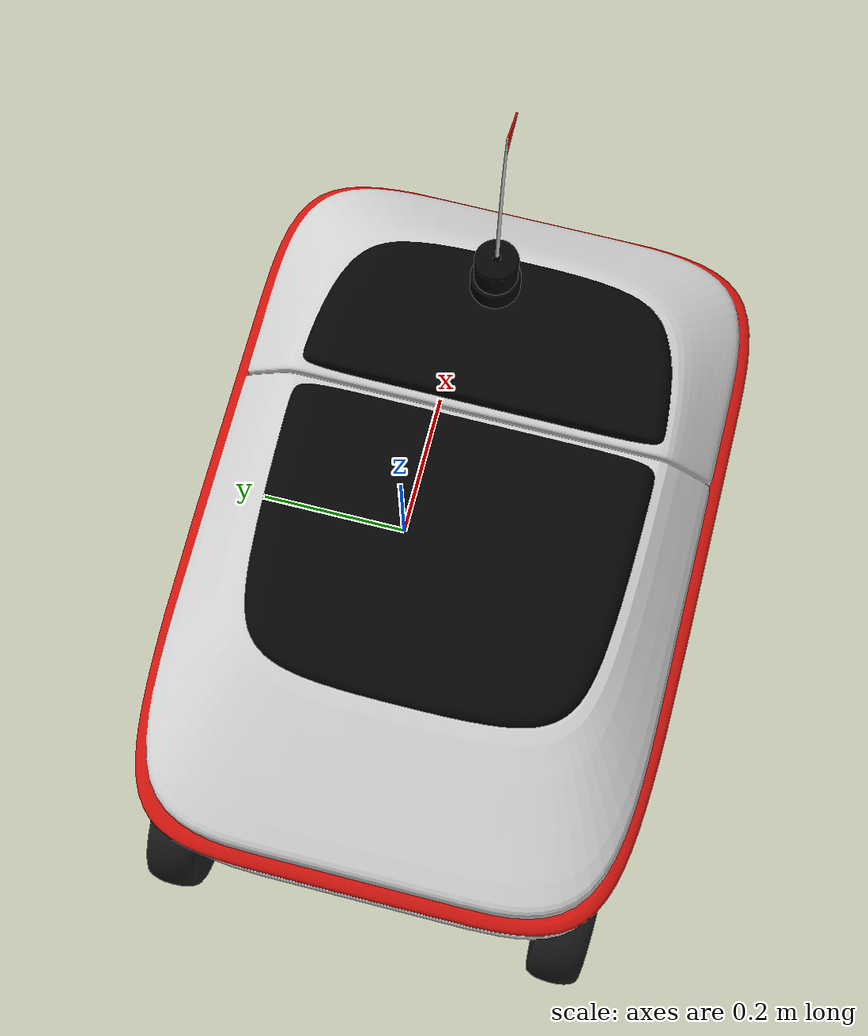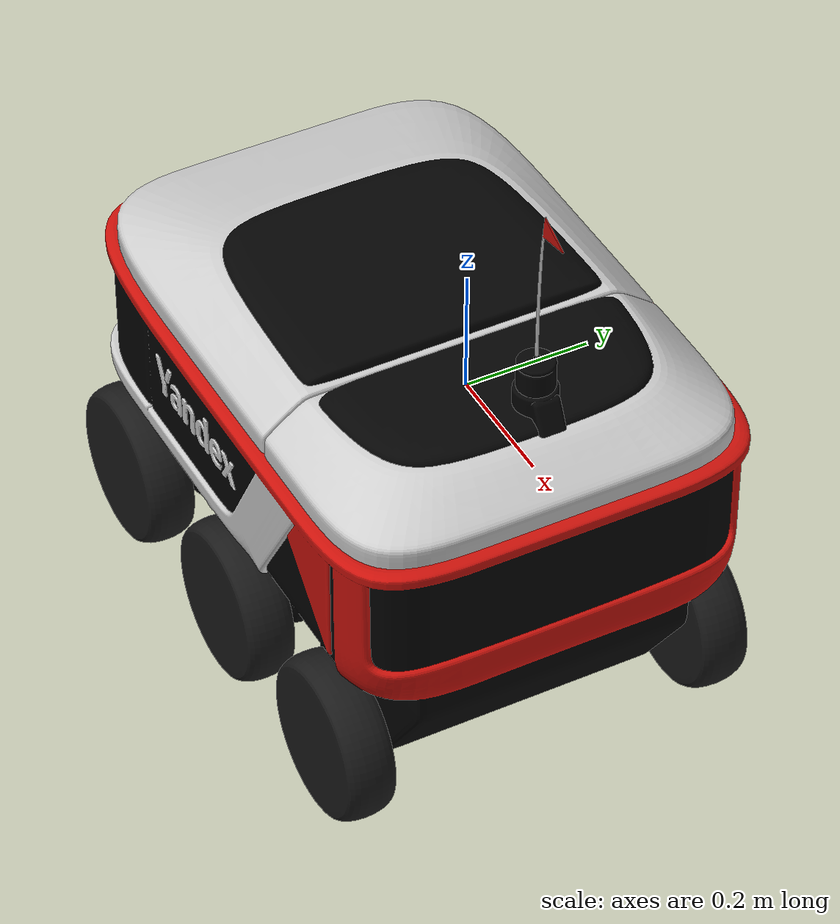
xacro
<?xml version="1.0"?>
<robot name="ya_rover" xmlns:xacro="http://ros.org/wiki/xacro">
    <xacro:arg name="robot_name" default="ya_rover"/>

    <xacro:include filename="$(find ya_rover_description)/urdf/components/plugins/gz_control.urdf.xacro" />
    <xacro:include filename="$(find ya_rover_description)/urdf/components/utils/materials.urdf.xacro"/>
    <xacro:include filename="$(find ya_rover_description)/urdf/components/base/base.urdf.xacro" />
    <xacro:include filename="$(find ya_rover_description)/urdf/components/wheels/wheel.urdf.xacro" />
    <xacro:include filename="$(find ya_rover_description)/urdf/components/sensors/lidar.urdf.xacro" />
    <xacro:include filename="$(find ya_rover_description)/urdf/components/plugins/control.urdf.xacro" />
    <xacro:include filename="$(find ya_rover_description)/urdf/components/plugins/transmission.urdf.xacro" />

    <xacro:base/>

    <xacro:wheel_macro prefix="" parent="base_link" name="wheel_front_left" xyz="0.26 0.23 -0.47" rpy="0 0 0" side="left"/>
    <xacro:wheel_macro prefix="" parent="base_link" name="wheel_front_right" xyz="0.26 -0.35 -0.47" rpy="0 0 ${-pi}" side="right"/>
    <xacro:wheel_macro prefix="" parent="base_link" name="wheel_middle_left" xyz="-0.06 0.23 -0.47" rpy="0 0 0" side="left"/>
    <xacro:wheel_macro prefix="" parent="base_link" name="wheel_middle_right" xyz="-0.06 -0.35 -0.47" rpy="0 0 ${-pi}" side="right"/>
    <xacro:wheel_macro prefix="" parent="base_link" name="wheel_rear_left" xyz="-0.40 0.23 -0.47" rpy="0 0 0" side="left"/>
    <xacro:wheel_macro prefix="" parent="base_link" name="wheel_rear_right" xyz="-0.40 -0.35 -0.47" rpy="0 0 ${-pi}" side="right"/>

    <xacro:lidar prefix="lidar" parent="base_link">
        <origin xyz="0.29 -0.05 0.13" rpy="0.0 0.0 0.0"/>
    </xacro:lidar>
    <xacro:control>
        <transmissions>
            <xacro:transmission joint="joint_wheel_front_left"/>
            <xacro:transmission joint="joint_wheel_front_right"/>
            <xacro:transmission joint="joint_wheel_middle_left"/>
            <xacro:transmission joint="joint_wheel_middle_right"/>
            <xacro:transmission joint="joint_wheel_rear_left"/>
            <xacro:transmission joint="joint_wheel_rear_right"/>
        </transmissions>
    </xacro:control>

  <xacro:gz_control/>

</robot>

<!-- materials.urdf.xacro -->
<robot xmlns:xacro="http://www.ros.org/wiki/xacro">

  <!--    COLORS FOR YANDEX ROVER    -->

  <material name="color_gray">
    <color rgba="0.6 0.6 0.6 1.0"/>
  </material>

  <material name="color_black">
    <color rgba="0.1 0.1 0.1 1.0"/>
  </material>

  <material name="color_blue">
    <color rgba="0.0 0.2 1.0 1.0"/>
  </material>

  <material name="color_red">
    <color rgba="1.0 0.0 0.0 1.0"/>
  </material>

</robot>

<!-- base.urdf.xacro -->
<robot xmlns:xacro="http://ros.org/wiki/xacro">

  <!--      BASE OF YANDEX ROVER     -->

<xacro:macro name="base">

    <link name="base_footprint"/>

    <link name="base_link">
      <visual>
        <geometry>
          <mesh filename="file://$(find ya_rover_description)/meshes/wheels/base_orig.dae" scale="0.5 0.5 0.5"/>
        </geometry>
        <origin xyz="0.0 -0.07 -0.5" rpy="0 0 ${pi/2}"/>
      </visual>
      <collision>
        <geometry>
          <box size="0.68 0.95 0.365"/>
        </geometry>
        <origin xyz="-0.03 -0.06 -0.12" rpy="0 0 ${pi/2}"/>
      </collision>
      <inertial>
        <mass value="1.0"/>
        <origin xyz="0 0 0" rpy="0 0 0"/>
        <inertia ixx="1.0" iyy="1.0" izz="1.0" ixy="0.0" ixz="0.0" iyz="0.0"/>
      </inertial>
      </link>

     <joint name="base_link_joint" type="fixed">
            <origin xyz="0.0 0.0 ${0.1/2 + 0.1}" rpy="0.0 0.0 0.0"/>
            <parent link="base_footprint"/>
            <child link="base_link"/>
    </joint>
</xacro:macro>
</robot>

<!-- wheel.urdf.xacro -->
<robot xmlns:xacro="http://www.ros.org/wiki/xacro">

  <!--     WHEEL OF YANDEX ROVER     -->
  <xacro:macro name="wheel_macro" params="prefix parent name xyz rpy side">

    <xacro:if value="${side == 'left'}">
    <xacro:property name="wheel_rpy_visual" value="0 0 ${pi/2}"/>
    <xacro:property name="wheel_xyz_visual" value="0.0 0.0 0.0"/>
    <xacro:property name="offset" value="0.0 0 0"/>
    <xacro:property name="axx" value=" 0 1 0"/>

    </xacro:if>

    <xacro:if value="${side == 'right'}">
    <xacro:property name="wheel_rpy_visual" value="0 0 ${pi/2}"/>
    <xacro:property name="wheel_xyz_visual" value="0 0 0"/>
    <xacro:property name="offset" value="-0.0 0 0"/>
    <xacro:property name="axx" value=" 0 -1 0"/>

    </xacro:if>

    <xacro:property name="wheel_radius" value="0.1"/>
    <xacro:property name="wheel_length" value="0.1"/>
    <xacro:property name="wheel_mass" value="3.0"/>

    <!-- Wheel link -->
    <link name="${prefix}${name}">
      <visual>
        <geometry>
          <mesh filename="file://$(find ya_rover_description)/meshes/wheels/wheel_final.stl" scale="0.5 0.5 0.5"/>
        </geometry>

        <origin xyz="${wheel_xyz_visual}" rpy="${wheel_rpy_visual}"/>
        <material name="color_black"/>
      </visual>

      <collision>
        <geometry>
          <cylinder length="0.065" radius="0.12"/>
        </geometry>
        <origin xyz="${offset}" rpy="0 ${pi/2} ${pi/2}"/>
        <material name="color_black"/>
      </collision>

      <inertial>
        <mass value="1.0"/>
        <origin xyz="0 0 0" rpy="0 0 0"/>
        <inertia ixx="0.01" iyy="0.01" izz="0.01" ixy="0.0" ixz="0.0" iyz="0.0"/>
      </inertial>
    </link>

    <joint name="${prefix}joint_${name}" type="revolute">
      <parent link="${parent}"/>
      <child link="${prefix}${name}"/>
      <origin xyz="${xyz}" rpy="${rpy}"/>
      <axis xyz="${axx}"/>
      <limit effort="10" velocity="10" lower="-1000" upper="1000"/>
      <mass value="${wheel_mass}"/>
      <inertia ixx="${(3*wheel_radius**2+wheel_length**2)*wheel_mass*1/12}" ixy="0.0" ixz="0.0"
                        iyy="${(3*wheel_radius**2+wheel_length**2)*wheel_mass*1/12}" iyz="0.0"
                        izz="${(wheel_mass*wheel_radius**2)*1/2}"/>
      <limit effort="100.0" lower="-0.5" upper="0.5" velocity="10" />
      <dynamics damping="0.2"/>
    </joint>

  </xacro:macro>

</robot>

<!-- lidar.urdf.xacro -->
<robot xmlns:xacro="http://www.ros.org/wiki/xacro">

  <!-- LIDAR MACRO FOR YANDEX ROVER  -->

  <xacro:include filename="$(find ya_rover_description)/urdf/components/plugins/gz_lidar.urdf.xacro"/>

  <xacro:macro name="lidar" params="prefix parent *origin">

    <joint name="${prefix}_joint" type="fixed">
        <parent link="${parent}"/>
        <child link="${prefix}_link"/>
        <xacro:insert_block name="origin"/>
    </joint>

    <link name="${prefix}_link">
      <visual>
        <origin xyz="0.0 0.0 0.0" rpy="0 0 ${pi/2}"/>
        <geometry>
            <mesh filename="file://$(find ya_rover_description)/meshes/sensors/lidar_flag.dae" scale="0.25 0.25 0.25"/>
        </geometry>
      </visual>
      <collision>
			<origin xyz="-0.11 -0.0 -0.43" rpy="0 0 ${pi/2}"/>
			<geometry>
				<mesh filename="file://$(find ya_rover_description)/meshes/sensors/lidar.stl" scale="0.25 0.25 0.25"/>
			</geometry>
      <material name="color_black"/>

	  </collision>
      <inertial>
        <origin xyz="0.0 -0.0 0.0" rpy="0 0 0"/>
        <mass value="0.1"/>
        <inertia ixx="1.0" ixy="0.0" ixz="0.0"
                 iyy="1.0" iyz="0.0"
                 izz="1.0"/>
      </inertial>
    </link>

    <xacro:gz_lidar prefix="${prefix}"/>

  </xacro:macro>

</robot>

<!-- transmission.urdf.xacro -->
<!-- TRANSMISSiON OF YANDEX ROVER  -->

<robot xmlns:xacro="http://ros.org/wiki/xacro">
    <xacro:macro name="transmission" params="joint">

        <joint name="${joint}">
            <command_interface name="velocity">
                <param name="min">-1</param>
                <param name="max">1</param>
            </command_interface>
            <state_interface name="position">
                <param name="initial_value">0.0</param>
            </state_interface>
            <state_interface name="velocity"/>
        </joint>
    </xacro:macro>
</robot>
